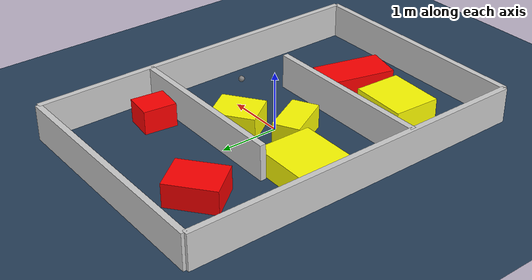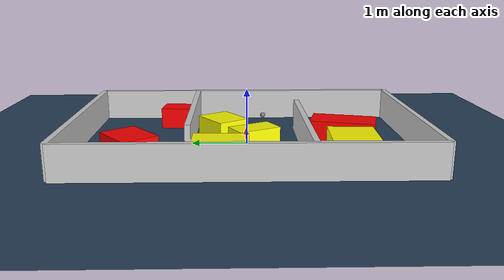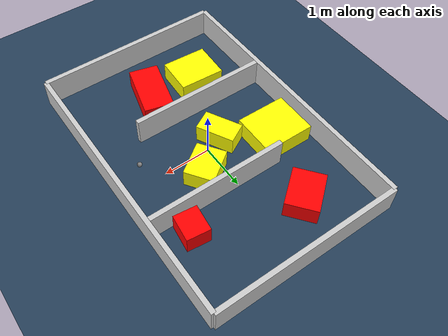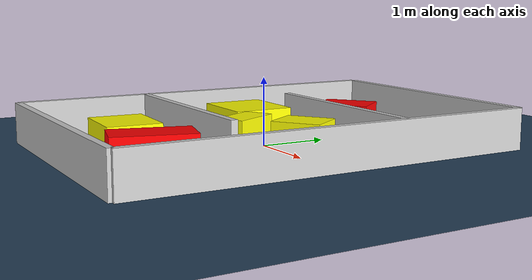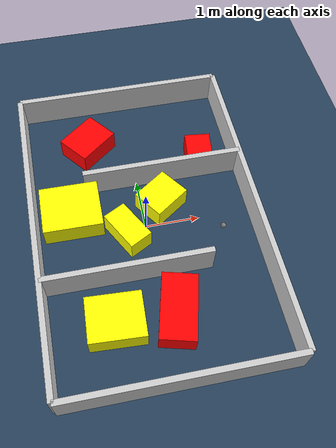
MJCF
<?xml version="1.0" ?>
<mujoco model="generated_environment">
  <option timestep="0.01" integrator="RK4" cone="elliptic"/>
  <default>
    <geom density="1"/>
  </default>
  <asset>
    <texture builtin="gradient" height="3072" rgb1="0.3 0.5 0.7" rgb2="0 0 0" type="skybox" width="512"/>
    <texture builtin="checker" height="300" mark="edge" markrgb="0.8 0.8 0.8" name="groundplane" rgb1="0.2 0.3 0.4" rgb2="0.1 0.2 0.3" type="2d" width="300"/>
    <material name="groundplane" reflectance="0.2" texrepeat="5 5" texture="groundplane" texuniform="true"/>
    <material name="robot" rgba="0.0 1.0 0.0 1"/>
  </asset>
  <worldbody>
    <light dir="0 0 -1" directional="true" pos="0 0 1.5"/>
    <geom condim="4" friction="1.0 0.005 0.001" material="groundplane" name="floor" size="0 0 0.05" type="plane"/>
    <body name="walls">
      <geom name="wall_1" condim="4" pos="-2.0 0.0 0.3" rgba="0.800000011920929 0.800000011920929 0.800000011920929 1.0" size="0.05 3.0 0.3" type="box"/>
      <geom name="wall_2" condim="4" pos="2.0 0.0 0.3" rgba="0.800000011920929 0.800000011920929 0.800000011920929 1.0" size="0.05 3.0 0.3" type="box"/>
      <geom name="wall_3" condim="4" pos="0.0 -3.0 0.3" rgba="0.800000011920929 0.800000011920929 0.800000011920929 1.0" size="2.0 0.05 0.3" type="box"/>
      <geom name="wall_4" condim="4" pos="0.0 3.0 0.3" rgba="0.800000011920929 0.800000011920929 0.800000011920929 1.0" size="2.0 0.05 0.3" type="box"/>
      <geom name="wall_5" condim="4" pos="-0.5 -1.0 0.3" rgba="0.800000011920929 0.800000011920929 0.800000011920929 1.0" size="1.5 0.05 0.3" type="box"/>
      <geom name="wall_6" condim="4" pos="0.5 1.0 0.3" rgba="0.800000011920929 0.800000011920929 0.800000011920929 1.0" size="1.5 0.05 0.3" type="box"/>
    </body>
    <body name="robot">
      <joint name="joint_x" type="slide" pos="0 0 0" axis="1 0 0"/>
      <joint name="joint_y" type="slide" pos="0 0 0" axis="0 1 0"/>
      <geom name="robot" type="sphere" pos="1.3648099021896054 -0.35626941346772467 0.2" size="0.05" mass="5." friction="1.0 0.005 0.0001" condim="4"/>
      <site name="sensor_ball"/>
    </body>
    <body name="obstacle_1_movable">
      <geom name="obstacle_1_movable" condim="4" pos="-1.3118287813036926 0.4581821655758622 0.2" euler="0 0 179.50188544067336" friction="1.0 0.005 0.001" rgba="1 1 0 1" size="0.5439108779117563 0.4720377778243837 0.2" type="box" mass="0.1"/>
      <joint type="free"/>
    </body>
    <body name="obstacle_2_static">
      <geom name="obstacle_2_static" condim="4" pos="0.19733555013440318 -1.8054954223590673 0.2" euler="0 0 165.5112607490742" friction="1.0 0.005 0.001" rgba="1 0 0 1" size="0.3115430759615675 0.5905452879911248 0.2" type="box"/>
    </body>
    <body name="obstacle_3_static">
      <geom name="obstacle_3_static" condim="4" pos="1.320921580510102 1.3870865935604275 0.2" euler="0 0 263.29932391626306" friction="1.0 0.005 0.001" rgba="1 0 0 1" size="0.2775491050461194 0.24343613117905893 0.2" type="box"/>
    </body>
    <body name="obstacle_4_movable">
      <geom name="obstacle_4_movable" condim="4" pos="-0.8582078476472769 -1.7880948342153395 0.2" euler="0 0 267.0120915005869" friction="1.0 0.005 0.001" rgba="1 1 0 1" size="0.4040034803908389 0.485129706221871 0.2" type="box" mass="0.1"/>
      <joint type="free"/>
    </body>
    <body name="obstacle_5_movable">
      <geom name="obstacle_5_movable" condim="4" pos="-0.361088816968109 -0.12281146049638014 0.2" euler="0 0 208.239811646534" friction="1.0 0.005 0.001" rgba="1 1 0 1" size="0.22592456800862962 0.4017742945033892 0.2" type="box" mass="0.1"/>
      <joint type="free"/>
    </body>
    <body name="obstacle_6_static">
      <geom name="obstacle_6_static" condim="4" pos="-0.786695016773733 2.0042376334218392 0.2" euler="0 0 218.37990953715126" friction="1.0 0.005 0.001" rgba="1 0 0 1" size="0.4213315803845218 0.3300155858713533 0.2" type="box"/>
    </body>
    <body name="obstacle_7_movable">
      <geom name="obstacle_7_movable" condim="4" pos="0.3697018975530033 0.43847911973080533 0.2" euler="0 0 304.9959629999485" friction="1.0 0.005 0.001" rgba="1 1 0 1" size="0.3097585005454555 0.37145970352290947 0.2" type="box" mass="0.1"/>
      <joint type="free"/>
    </body>
  </worldbody>
  <actuator>
    <motor name="actuator_x" joint="joint_x" gear="1" ctrlrange="-1 1"/>
    <motor name="actuator_y" joint="joint_y" gear="1" ctrlrange="-1 1"/>
  </actuator>
</mujoco>
